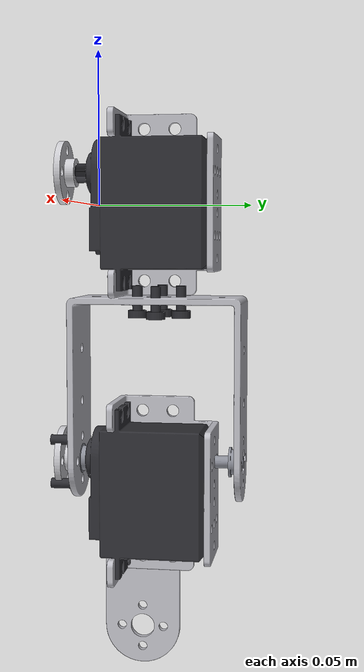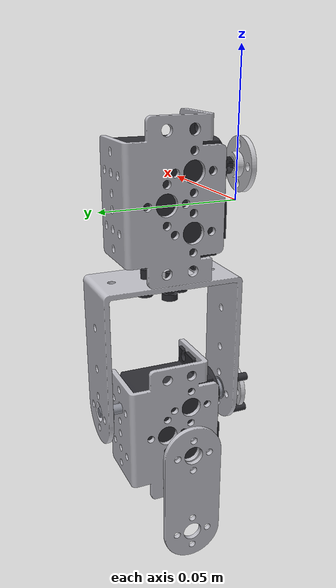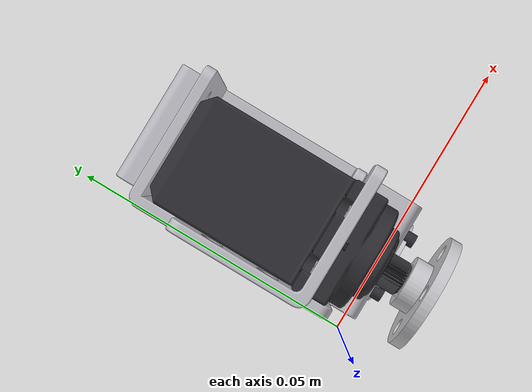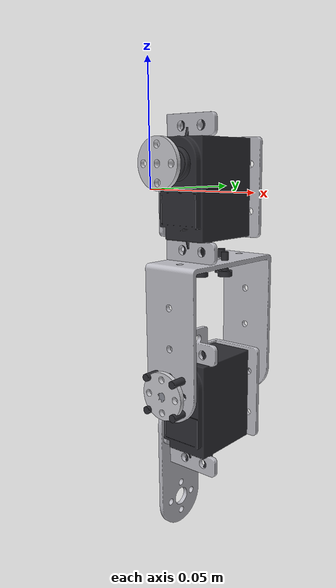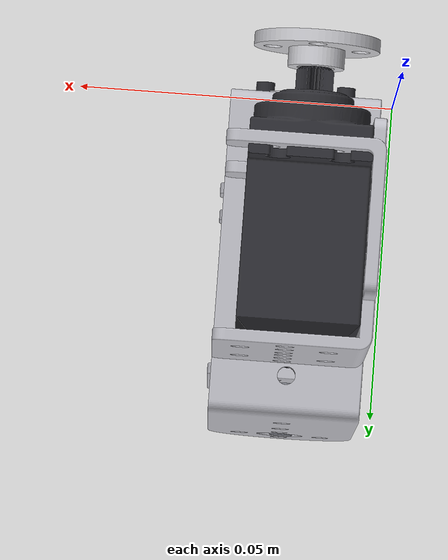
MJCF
<?xml version='1.0' encoding='utf-8'?>
  <mujoco model="left_arm">
  <compiler angle="radian" meshdir="." autolimits="true"/>
  <visual>
    <global offwidth="1024" offheight="1024"/>
    <headlight ambient="0.55 0.55 0.55" diffuse="0.6 0.6 0.6" specular="0.2 0.2 0.2"/>
  </visual>
  <default>
    <default class="visual"><geom type="mesh" contype="0" conaffinity="0" group="2" density="0"/></default>
    <default class="collision"><geom type="mesh" group="3"/></default>
  </default>
  <asset>
    <mesh name="multi" file="多功能/多功能支架.STL" scale="0.001 0.001 0.001"/>
    <mesh name="straight" file="一字/一字支架.STL" scale="0.001 0.001 0.001"/>
    <mesh name="servo" file="舵机/舵机.STL" scale="0.001 0.001 0.001"/>
    <mesh name="horn" file="金属舵盘/金属舵盘.STL" scale="0.001 0.001 0.001"/>
    <mesh name="longU" file="长U/长U支架.STL" scale="0.001 0.001 0.001"/>
    <mesh name="bearing" file="法兰轴承/法兰轴承.STL" scale="0.001 0.001 0.001"/>
    <material name="bracket" rgba="0.75 0.75 0.78 1"/>
    <material name="dark" rgba="0.18 0.18 0.20 1"/>
    <material name="horn" rgba="0.80 0.80 0.82 1"/>
    <material name="steel" rgba="0.55 0.56 0.60 1"/>
  </asset>
  <worldbody>
    <!-- ============================== tricep (upper arm) ============================== -->
    <body name="multi_0" pos="0.013500 0.022000 0.000000" quat="0.000000 0.707107 0.000000 0.707107">
      <geom name="multi_0_v" mesh="multi" class="visual" material="bracket" pos="-0.029 -0.0185 -0.0125"/>
      <geom name="multi_0_c" mesh="multi" class="collision" pos="-0.029 -0.0185 -0.0125" density="2700"/>
    </body>
    <body name="servo_1" pos="0.012750 0.017000 0.000000" quat="0.000000 0.000000 -0.707107 0.707107">
      <geom name="servo_1_v" mesh="servo" class="visual" material="dark" pos="-0.009752 -0.027 -0.0215"/>
      <geom name="servo_1_c" mesh="servo" class="collision" material="dark" pos="-0.009752 -0.027 -0.0215" density="1600"/>
    </body>
    <body name="horn_2" pos="0.012750 -0.007000 0.010000" quat="0.000000 0.000000 1.000000 0.000000">
      <geom name="horn_2_v" mesh="horn" class="visual" material="horn" pos="-0.01 -0.0026 -0.01"/>
      <geom name="horn_2_c" mesh="horn" class="collision" material="horn" pos="-0.01 -0.0026 -0.01" density="2700"/>
    </body>
    <!-- 长U bracket: base plate on top bolted under the multi, prongs down. -->
    <body name="longU_down" pos="0.013500 0.022000 -0.061250" quat="-0.5 0.5 0.5 -0.5">
      <geom name="longU_down_v" mesh="longU" class="visual" material="bracket" pos="-0.027 -0.03225 -0.0125"/>
      <geom name="longU_down_c" mesh="longU" class="collision" pos="-0.027 -0.03225 -0.0125" density="2700"/>
    </body>
    <!-- M3 screws + nuts through the 长U base-plate holes into the 多功能 bottom (visual only). -->
    <geom name="base_screw_1" type="cylinder" size="0.0016 0.005" pos="0.006600 0.022100 -0.030500" material="dark" contype="0" conaffinity="0" group="2"/>
    <geom name="base_screw_2" type="cylinder" size="0.0016 0.005" pos="0.020600 0.022100 -0.030500" material="dark" contype="0" conaffinity="0" group="2"/>
    <geom name="base_screw_3" type="cylinder" size="0.0016 0.005" pos="0.013500 0.029100 -0.030500" material="dark" contype="0" conaffinity="0" group="2"/>
    <geom name="base_screw_4" type="cylinder" size="0.0016 0.005" pos="0.013500 0.015100 -0.030500" material="dark" contype="0" conaffinity="0" group="2"/>
    <geom name="base_nut_1" type="cylinder" size="0.003 0.0012" pos="0.006600 0.022100 -0.034500" material="dark" contype="0" conaffinity="0" group="2"/>
    <geom name="base_nut_2" type="cylinder" size="0.003 0.0012" pos="0.020600 0.022100 -0.034500" material="dark" contype="0" conaffinity="0" group="2"/>
    <geom name="base_nut_3" type="cylinder" size="0.003 0.0012" pos="0.013500 0.029100 -0.034500" material="dark" contype="0" conaffinity="0" group="2"/>
    <geom name="base_nut_4" type="cylinder" size="0.003 0.0012" pos="0.013500 0.015100 -0.034500" material="dark" contype="0" conaffinity="0" group="2"/>
    <!-- Horn retaining screws (visual only), through the 4 disc holes. -->
    <!-- Elbow pivot (Y axis) at the 长U prong A bore (X=0.01325, Z=-0.08125): flange
         bearing centred in the prong and a 4 mm shaft through prong + the 金属舵盘
         bolted on its outer face. -->
    <body name="elbow_bearing" pos="0.013250 -0.002019 -0.081250">
      <geom name="elbow_bearing_v" mesh="bearing" class="visual" material="steel" pos="-0.00475 -0.0015 -0.00475"/>
    </body>
    <geom name="elbow_shaft" type="cylinder" size="0.002 0.0055" pos="0.013250 -0.004500 -0.081250" quat="0.7071068 0.7071068 0 0" material="steel" contype="0" conaffinity="0" group="2"/>
    <body name="far_bearing" pos="0.013250 0.046019 -0.081250">
      <geom name="far_bearing_v" mesh="bearing" class="visual" material="steel" pos="-0.00475 -0.0015 -0.00475"/>
    </body>
    <geom name="far_shaft" type="cylinder" size="0.002 0.0045" pos="0.013250 0.044500 -0.081250" quat="0.7071068 0.7071068 0 0" material="steel" contype="0" conaffinity="0" group="2"/>

    <body name="forearm" pos="0.000750 -0.000500 -0.091000" quat="1.000000 0.000000 0.000000 0.000000">
      <body name="multi_0_f" pos="0.013500 0.022000 0.000000" quat="0.000000 0.707107 0.000000 0.707107">
        <geom name="multi_0_f_v" mesh="multi" class="visual" material="bracket" pos="-0.029 -0.0185 -0.0125"/>
        <geom name="multi_0_f_c" mesh="multi" class="collision" pos="-0.029 -0.0185 -0.0125" density="2700"/>
      </body>
      <body name="servo_1_f" pos="0.012750 0.017000 0.000000" quat="0.000000 0.000000 -0.707107 0.707107">
        <geom name="servo_1_f_v" mesh="servo" class="visual" material="dark" pos="-0.009752 -0.027 -0.0215"/>
        <geom name="servo_1_f_c" mesh="servo" class="collision" material="dark" pos="-0.009752 -0.027 -0.0215" density="1600"/>
      </body>
      <body name="horn_2_f" pos="0.012750 -0.007000 0.010000" quat="0.000000 0.000000 1.000000 0.000000">
        <geom name="horn_2_f_v" mesh="horn" class="visual" material="horn" pos="-0.01 -0.0026 -0.01"/>
        <geom name="horn_2_f_c" mesh="horn" class="collision" material="horn" pos="-0.01 -0.0026 -0.01" density="2700"/>
      </body>
      <body name="straight_3_f" pos="0.000003 0.014996 -0.029991" quat="0.707107 0.000000 0.707107 0.000000">
        <geom name="straight_3_f_v" mesh="straight" class="visual" material="bracket" pos="-0.0315 -0.0125 -0.001001"/>
        <geom name="straight_3_f_c" mesh="straight" class="collision" pos="-0.0315 -0.0125 -0.001001" density="2700"/>
      </body>
      <geom name="horn_s0_f" type="cylinder" size="0.0016 0.004" pos="0.005500 -0.007000 0.016750" quat="0.7071068 0.7071068 0 0" material="dark" contype="0" conaffinity="0" group="2"/>
      <geom name="horn_s1_f" type="cylinder" size="0.0016 0.004" pos="0.019500 -0.007000 0.016750" quat="0.7071068 0.7071068 0 0" material="dark" contype="0" conaffinity="0" group="2"/>
      <geom name="horn_s2_f" type="cylinder" size="0.0016 0.004" pos="0.005500 -0.007000 0.002750" quat="0.7071068 0.7071068 0 0" material="dark" contype="0" conaffinity="0" group="2"/>
      <geom name="horn_s3_f" type="cylinder" size="0.0016 0.004" pos="0.019500 -0.007000 0.002750" quat="0.7071068 0.7071068 0 0" material="dark" contype="0" conaffinity="0" group="2"/>
    </body>
  </worldbody>
</mujoco>
